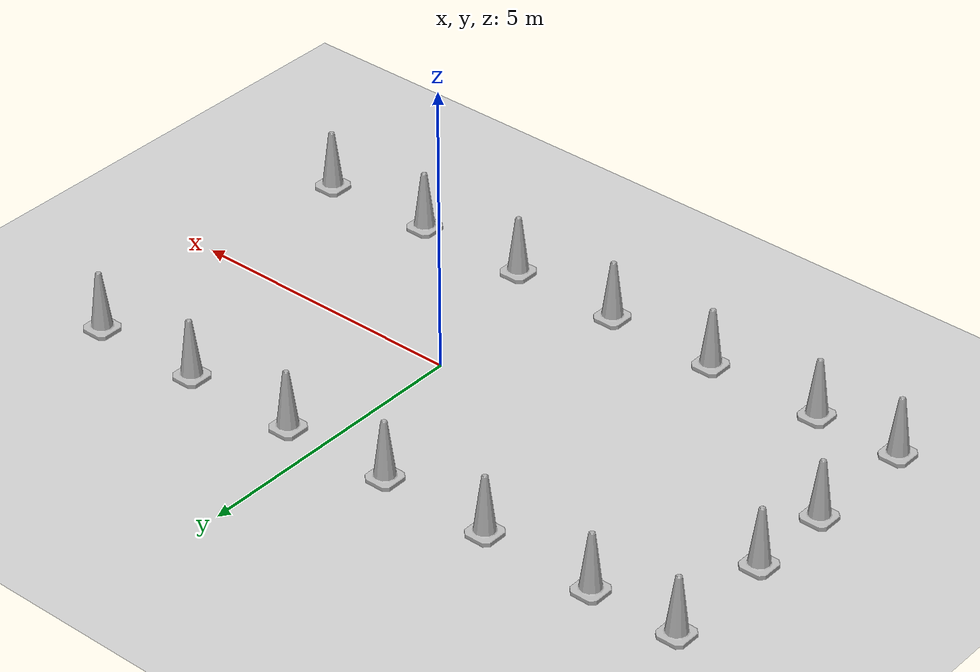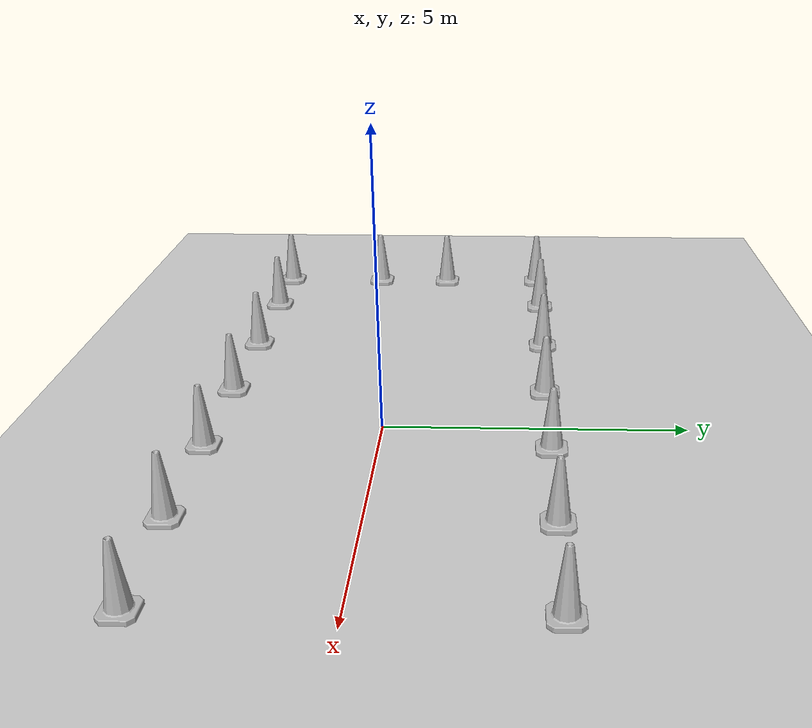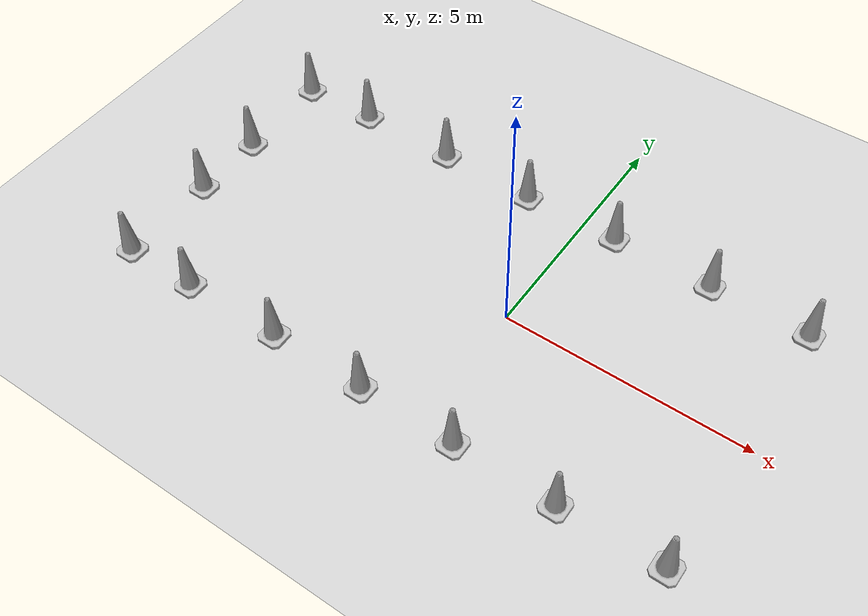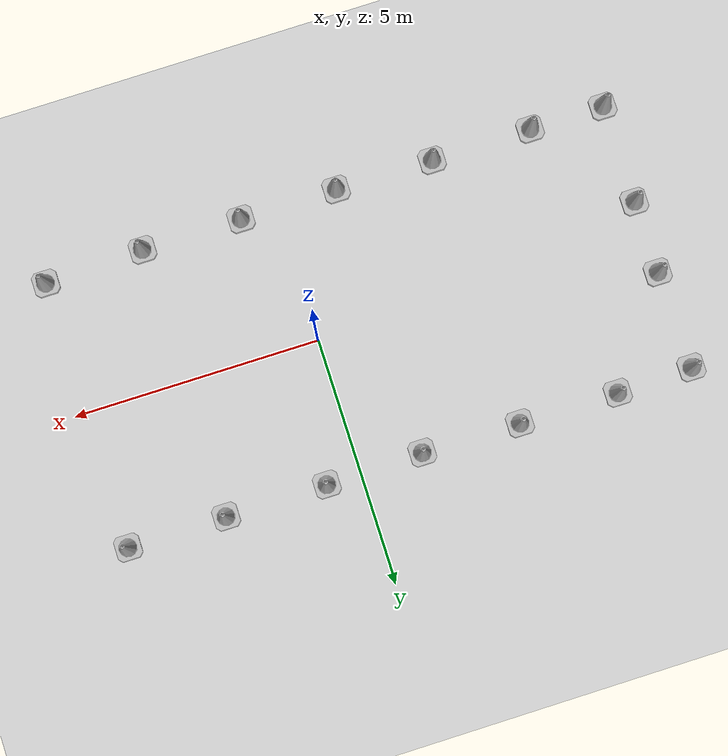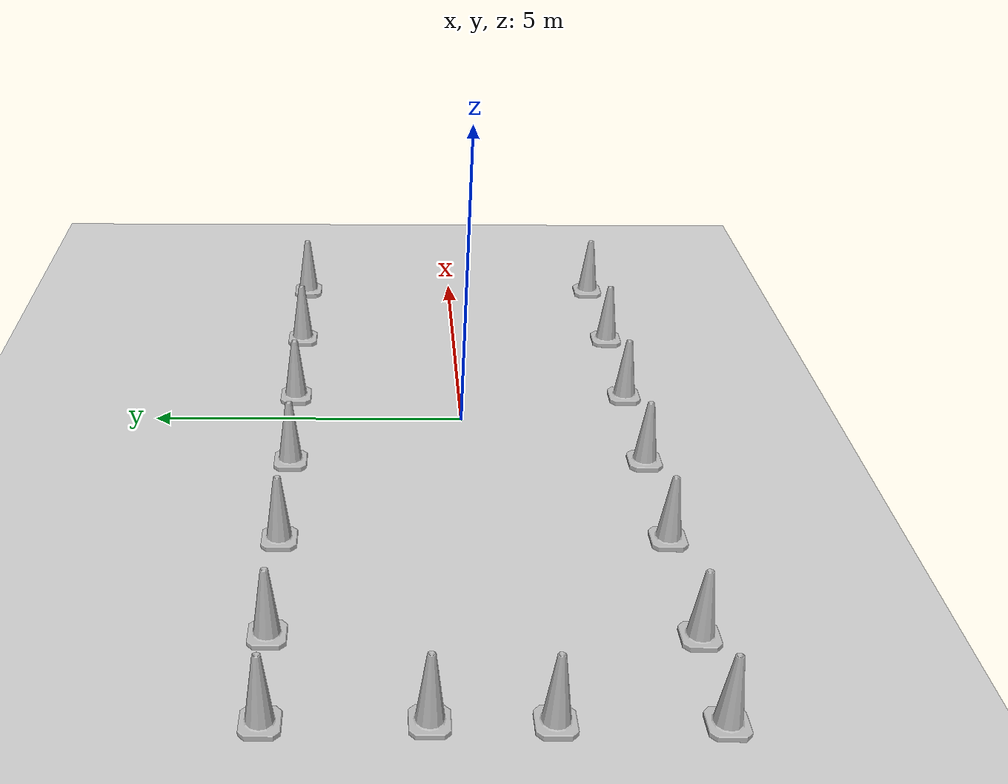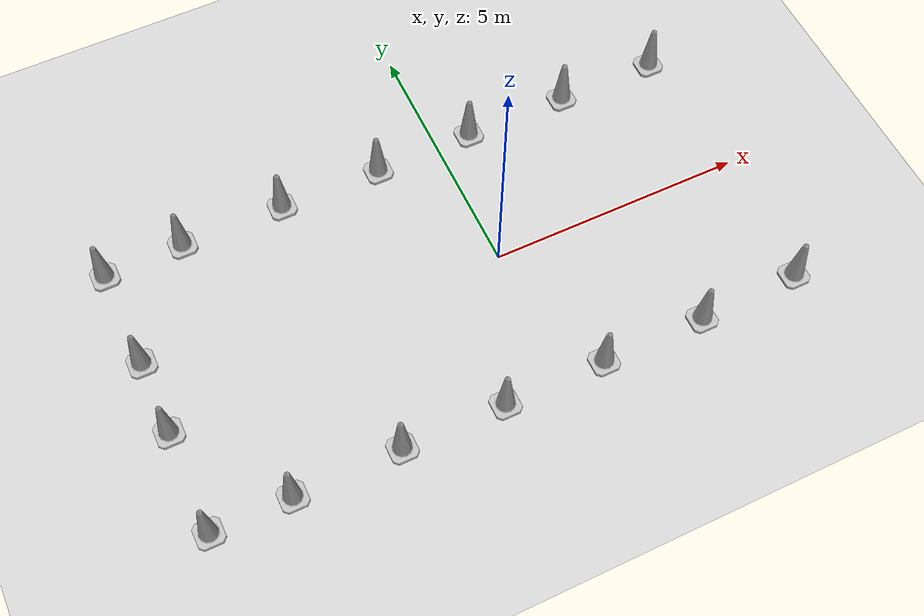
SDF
<sdf version="1.7">
 <world name="default">
  <model name="ground_plane">
   <static>1</static>
   <link name="link">
    <collision name="collision">
     <geometry><plane><normal>0 0 1</normal><size>100 100</size></plane></geometry>
     <surface>
      <contact><collide_bitmask>65535</collide_bitmask></contact>
      <friction><ode><mu>100</mu><mu2>50</mu2></ode></friction>
     </surface>
    </collision>
    <visual name="visual">
     <cast_shadows>0</cast_shadows>
     <geometry><plane><normal>0 0 1</normal><size>100 100</size></plane></geometry>
     <material>
      <script><uri>file://media/materials/scripts/gazebo.material</uri><name>Gazebo/Grey</name></script>
     </material>
    </visual>
   </link>
  </model>
  <model name="Construction Cone">
   <link name="link">
    <collision name="collision">
     <geometry>
      <mesh><scale>10 10 10</scale><uri>model://construction_cone/meshes/construction_cone.dae</uri></mesh>
     </geometry>
    </collision>
    <visual name="visual">
     <geometry>
      <mesh><scale>10 10 10</scale><uri>model://construction_cone/meshes/construction_cone.dae</uri></mesh>
     </geometry>
    </visual>
    <inertial>
     <inertia><ixx>1</ixx><ixy>0</ixy><ixz>0</ixz><iyy>1</iyy><iyz>0</iyz><izz>1</izz></inertia>
     <mass>1</mass>
    </inertial>
   </link>
   <pose>2.76839 -2.76281 -0 0 -0 0</pose>
  </model>
  <model name="Construction Cone_0">
   <link name="link">
    <collision name="collision">
     <geometry>
      <mesh><scale>10 10 10</scale><uri>model://construction_cone/meshes/construction_cone.dae</uri></mesh>
     </geometry>
    </collision>
    <visual name="visual">
     <geometry>
      <mesh><scale>10 10 10</scale><uri>model://construction_cone/meshes/construction_cone.dae</uri></mesh>
     </geometry>
    </visual>
    <inertial>
     <inertia><ixx>1</ixx><ixy>0</ixy><ixz>0</ixz><iyy>1</iyy><iyz>0</iyz><izz>1</izz></inertia>
     <mass>1</mass>
    </inertial>
   </link>
   <pose>0.73598 -2.76014 -0 0 -0 0</pose>
  </model>
  <model name="Construction Cone_1">
   <link name="link">
    <collision name="collision">
     <geometry>
      <mesh><scale>10 10 10</scale><uri>model://construction_cone/meshes/construction_cone.dae</uri></mesh>
     </geometry>
    </collision>
    <visual name="visual">
     <geometry>
      <mesh><scale>10 10 10</scale><uri>model://construction_cone/meshes/construction_cone.dae</uri></mesh>
     </geometry>
    </visual>
    <inertial>
     <inertia><ixx>1</ixx><ixy>0</ixy><ixz>0</ixz><iyy>1</iyy><iyz>0</iyz><izz>1</izz></inertia>
     <mass>1</mass>
    </inertial>
   </link>
   <pose>-1.23517 -2.75761 -0 0 -1e-06 0</pose>
  </model>
  <model name="Construction Cone_2">
   <link name="link">
    <collision name="collision">
     <geometry>
      <mesh><scale>10 10 10</scale><uri>model://construction_cone/meshes/construction_cone.dae</uri></mesh>
     </geometry>
    </collision>
    <visual name="visual">
     <geometry>
      <mesh><scale>10 10 10</scale><uri>model://construction_cone/meshes/construction_cone.dae</uri></mesh>
     </geometry>
    </visual>
    <inertial>
     <inertia><ixx>1</ixx><ixy>0</ixy><ixz>0</ixz><iyy>1</iyy><iyz>0</iyz><izz>1</izz></inertia>
     <mass>1</mass>
    </inertial>
   </link>
   <pose>-3.22238 -2.7396 -0 0 -0 0</pose>
  </model>
  <model name="Construction Cone_3">
   <link name="link">
    <collision name="collision">
     <geometry>
      <mesh><scale>10 10 10</scale><uri>model://construction_cone/meshes/construction_cone.dae</uri></mesh>
     </geometry>
    </collision>
    <visual name="visual">
     <geometry>
      <mesh><scale>10 10 10</scale><uri>model://construction_cone/meshes/construction_cone.dae</uri></mesh>
     </geometry>
    </visual>
    <inertial>
     <inertia><ixx>1</ixx><ixy>0</ixy><ixz>0</ixz><iyy>1</iyy><iyz>0</iyz><izz>1</izz></inertia>
     <mass>1</mass>
    </inertial>
   </link>
   <pose>-5.26801 -2.74863 -0 0 -0 0</pose>
  </model>
  <model name="Construction Cone_4">
   <link name="link">
    <collision name="collision">
     <geometry>
      <mesh><scale>10 10 10</scale><uri>model://construction_cone/meshes/construction_cone.dae</uri></mesh>
     </geometry>
    </collision>
    <visual name="visual">
     <geometry>
      <mesh><scale>10 10 10</scale><uri>model://construction_cone/meshes/construction_cone.dae</uri></mesh>
     </geometry>
    </visual>
    <inertial>
     <inertia><ixx>1</ixx><ixy>0</ixy><ixz>0</ixz><iyy>1</iyy><iyz>0</iyz><izz>1</izz></inertia>
     <mass>1</mass>
    </inertial>
   </link>
   <pose>-6.78355 -2.74659 -0 0 -0 0</pose>
  </model>
  <model name="Construction Cone_5">
   <link name="link">
    <collision name="collision">
     <geometry>
      <mesh><scale>10 10 10</scale><uri>model://construction_cone/meshes/construction_cone.dae</uri></mesh>
     </geometry>
    </collision>
    <visual name="visual">
     <geometry>
      <mesh><scale>10 10 10</scale><uri>model://construction_cone/meshes/construction_cone.dae</uri></mesh>
     </geometry>
    </visual>
    <inertial>
     <inertia><ixx>1</ixx><ixy>0</ixy><ixz>0</ixz><iyy>1</iyy><iyz>0</iyz><izz>1</izz></inertia>
     <mass>1</mass>
    </inertial>
   </link>
   <pose>-6.7807 -0.739269 -0 0 -0 0</pose>
  </model>
  <model name="Construction Cone_6">
   <link name="link">
    <collision name="collision">
     <geometry>
      <mesh><scale>10 10 10</scale><uri>model://construction_cone/meshes/construction_cone.dae</uri></mesh>
     </geometry>
    </collision>
    <visual name="visual">
     <geometry>
      <mesh><scale>10 10 10</scale><uri>model://construction_cone/meshes/construction_cone.dae</uri></mesh>
     </geometry>
    </visual>
    <inertial>
     <inertia><ixx>1</ixx><ixy>0</ixy><ixz>0</ixz><iyy>1</iyy><iyz>0</iyz><izz>1</izz></inertia>
     <mass>1</mass>
    </inertial>
   </link>
   <pose>-6.7786 0.736705 -0 0 -0 0</pose>
  </model>
  <model name="Construction Cone_7">
   <link name="link">
    <collision name="collision">
     <geometry>
      <mesh><scale>10 10 10</scale><uri>model://construction_cone/meshes/construction_cone.dae</uri></mesh>
     </geometry>
    </collision>
    <visual name="visual">
     <geometry>
      <mesh><scale>10 10 10</scale><uri>model://construction_cone/meshes/construction_cone.dae</uri></mesh>
     </geometry>
    </visual>
    <inertial>
     <inertia><ixx>1</ixx><ixy>0</ixy><ixz>0</ixz><iyy>1</iyy><iyz>0</iyz><izz>1</izz></inertia>
     <mass>1</mass>
    </inertial>
   </link>
   <pose>-6.81514 2.7244 -0 0 -0 0</pose>
  </model>
  <model name="Construction Cone_8">
   <link name="link">
    <collision name="collision">
     <geometry>
      <mesh><scale>10 10 10</scale><uri>model://construction_cone/meshes/construction_cone.dae</uri></mesh>
     </geometry>
    </collision>
    <visual name="visual">
     <geometry>
      <mesh><scale>10 10 10</scale><uri>model://construction_cone/meshes/construction_cone.dae</uri></mesh>
     </geometry>
    </visual>
    <inertial>
     <inertia><ixx>1</ixx><ixy>0</ixy><ixz>0</ixz><iyy>1</iyy><iyz>0</iyz><izz>1</izz></inertia>
     <mass>1</mass>
    </inertial>
   </link>
   <pose>-5.27987 2.76148 -0 0 -0 0</pose>
  </model>
  <model name="Construction Cone_9">
   <link name="link">
    <collision name="collision">
     <geometry>
      <mesh><scale>10 10 10</scale><uri>model://construction_cone/meshes/construction_cone.dae</uri></mesh>
     </geometry>
    </collision>
    <visual name="visual">
     <geometry>
      <mesh><scale>10 10 10</scale><uri>model://construction_cone/meshes/construction_cone.dae</uri></mesh>
     </geometry>
    </visual>
    <inertial>
     <inertia><ixx>1</ixx><ixy>0</ixy><ixz>0</ixz><iyy>1</iyy><iyz>0</iyz><izz>1</izz></inertia>
     <mass>1</mass>
    </inertial>
   </link>
   <pose>-3.26894 2.74943 -0 0 -0 0</pose>
  </model>
  <model name="Construction Cone_10">
   <link name="link">
    <collision name="collision">
     <geometry>
      <mesh><scale>10 10 10</scale><uri>model://construction_cone/meshes/construction_cone.dae</uri></mesh>
     </geometry>
    </collision>
    <visual name="visual">
     <geometry>
      <mesh><scale>10 10 10</scale><uri>model://construction_cone/meshes/construction_cone.dae</uri></mesh>
     </geometry>
    </visual>
    <inertial>
     <inertia><ixx>1</ixx><ixy>0</ixy><ixz>0</ixz><iyy>1</iyy><iyz>0</iyz><izz>1</izz></inertia>
     <mass>1</mass>
    </inertial>
   </link>
   <pose>-1.27148 2.71771 -0 0 -0 0</pose>
  </model>
  <model name="Construction Cone_11">
   <link name="link">
    <collision name="collision">
     <geometry>
      <mesh><scale>10 10 10</scale><uri>model://construction_cone/meshes/construction_cone.dae</uri></mesh>
     </geometry>
    </collision>
    <visual name="visual">
     <geometry>
      <mesh><scale>10 10 10</scale><uri>model://construction_cone/meshes/construction_cone.dae</uri></mesh>
     </geometry>
    </visual>
    <inertial>
     <inertia><ixx>1</ixx><ixy>0</ixy><ixz>0</ixz><iyy>1</iyy><iyz>0</iyz><izz>1</izz></inertia>
     <mass>1</mass>
    </inertial>
   </link>
   <pose>0.693911 2.74863 -0 0 -1e-06 0</pose>
  </model>
  <model name="Construction Cone_12">
   <link name="link">
    <collision name="collision">
     <geometry>
      <mesh><scale>10 10 10</scale><uri>model://construction_cone/meshes/construction_cone.dae</uri></mesh>
     </geometry>
    </collision>
    <visual name="visual">
     <geometry>
      <mesh><scale>10 10 10</scale><uri>model://construction_cone/meshes/construction_cone.dae</uri></mesh>
     </geometry>
    </visual>
    <inertial>
     <inertia><ixx>1</ixx><ixy>0</ixy><ixz>0</ixz><iyy>1</iyy><iyz>0</iyz><izz>1</izz></inertia>
     <mass>1</mass>
    </inertial>
   </link>
   <pose>2.75258 2.7483 -4e-06 4e-06 -1e-06 0</pose>
  </model>
  <model name="Construction Cone_13">
   <link name="link">
    <collision name="collision">
     <geometry>
      <mesh><scale>10 10 10</scale><uri>model://construction_cone/meshes/construction_cone.dae</uri></mesh>
     </geometry>
    </collision>
    <visual name="visual">
     <geometry>
      <mesh><scale>10 10 10</scale><uri>model://construction_cone/meshes/construction_cone.dae</uri></mesh>
     </geometry>
    </visual>
    <inertial>
     <inertia><ixx>1</ixx><ixy>0</ixy><ixz>0</ixz><iyy>1</iyy><iyz>0</iyz><izz>1</izz></inertia>
     <mass>1</mass>
    </inertial>
   </link>
   <pose>4.74662 2.74762 -0 0 -0 0</pose>
  </model>
  <model name="Construction Cone_14">
   <link name="link">
    <collision name="collision">
     <geometry>
      <mesh><scale>10 10 10</scale><uri>model://construction_cone/meshes/construction_cone.dae</uri></mesh>
     </geometry>
    </collision>
    <visual name="visual">
     <geometry>
      <mesh><scale>10 10 10</scale><uri>model://construction_cone/meshes/construction_cone.dae</uri></mesh>
     </geometry>
    </visual>
    <inertial>
     <inertia><ixx>1</ixx><ixy>0</ixy><ixz>0</ixz><iyy>1</iyy><iyz>0</iyz><izz>1</izz></inertia>
     <mass>1</mass>
    </inertial>
   </link>
   <pose>4.77756 -2.69988 -0 0 -0 0</pose>
  </model>
 </world>
</sdf>
